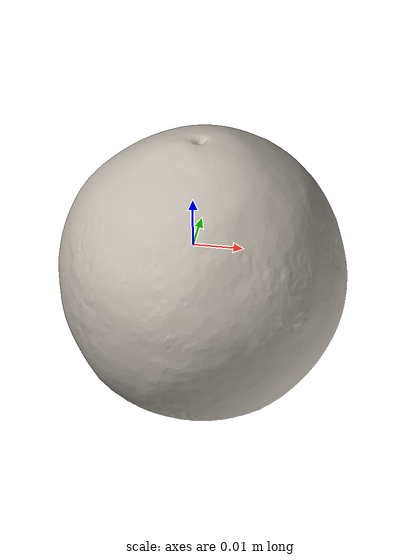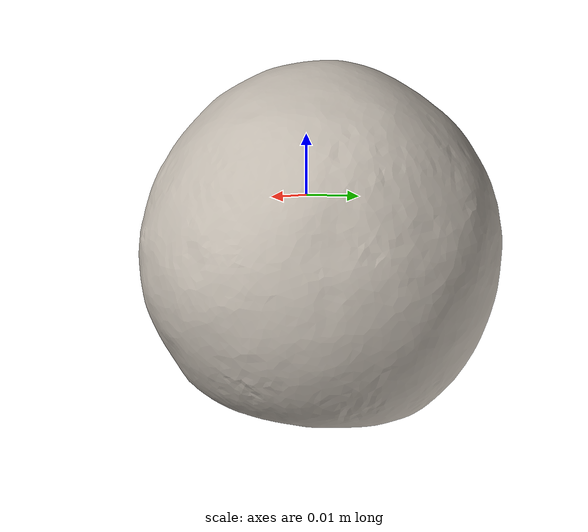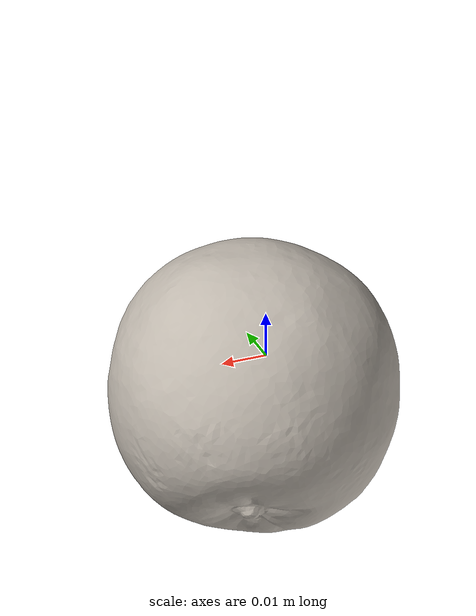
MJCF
<mujoco model="bread">
  <asset>
    <mesh file="nontextured.stl" name="obj_mesh" scale="0.8 0.8 0.8"/>
    <texture file="../../../../../textures/bread.png" type="2d" name="tex-bread" />
    <material name="bread" reflectance="0.7" texrepeat="15 15" texture="tex-bread" texuniform="true"/>
  </asset>
  <worldbody>
    <body>
      <body name="collision">
        <geom pos="0.0069349999999999985 0.01836 -0.035428" mesh="obj_mesh" type="mesh" solimp="0.998 0.998 0.001" solref="0.001 1" density="50" friction="0.95 0.3 0.1"  material="bread" group="1" condim="4"/>
      </body>
      <body name="visual">
        <geom pos="0.0069349999999999985 0.01836 -0.035428" mesh="obj_mesh" type="mesh" material="bread"  conaffinity="0" contype="0"  group="0" mass="0.0001"/>
        <geom pos="0.0069349999999999985 0.01836 -0.035428" mesh="obj_mesh" type="mesh" material="bread"  conaffinity="0" contype="0"  group="1" mass="0.0001"/>
      </body>
      <site rgba="0 0 0 0" size="0.005" pos="0 0 -0.035676" name="bottom_site"/>
      <site rgba="0 0 0 0" size="0.005" pos="0 0 0.035676" name="top_site"/>
      <site rgba="0 0 0 0" size="0.005" pos="0.036079 0.036993 0.035676" name="horizontal_radius_site"/>
    </body>
  </worldbody>
</mujoco>
